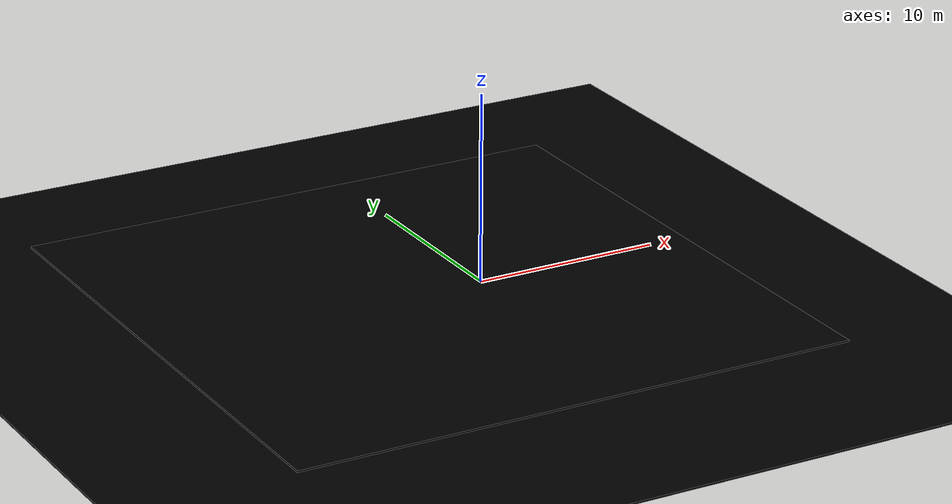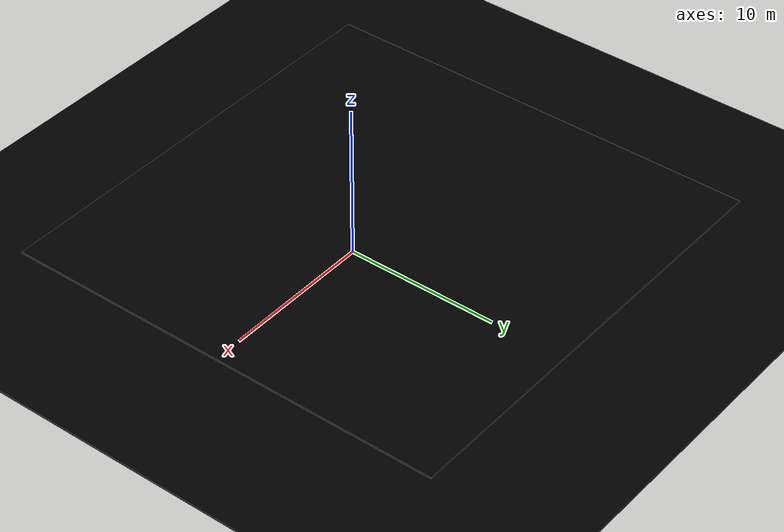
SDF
<sdf version="1.4">
 <world name="default">
  <light name="sun" type="directional">
   <pose>0 0 10 0 -0 0</pose>
   <diffuse>1.0 1.0 1.0 1</diffuse>
   <specular>0.2 0.2 0.2 1</specular>
   <attenuation>
    <range>1000</range>
    <constant>0.9</constant>
    <linear>0.01</linear>
    <quadratic>0.001</quadratic>
   </attenuation>
   <direction>-0.5 -0.5 -1.0</direction>
  </light>
  <include><uri>model://surface</uri><pose>0 0 -0.785  0 0 0</pose></include>
  <include><uri>model://ramp_groundplane</uri><pose>-3 0 0 0 0 0</pose></include>
  <include><uri>model://3m_ramp</uri><pose>-9.25 0 -0.785 0 -0.55 0</pose></include>
  <physics type="ode">
   <max_step_size>0.001</max_step_size>
   <real_time_factor>1</real_time_factor>
   <real_time_update_rate>1000</real_time_update_rate>
   <gravity>0 0 -9.8</gravity>
  </physics>
  <scene>
   <ambient>1 1 1 1</ambient>
   <background>1 1 1 1</background>
   <shadows>1</shadows>
   <sky><clouds><speed>12</speed></clouds></sky>
  </scene>
  <spherical_coordinates>
   <surface_model>EARTH_WGS84</surface_model>
   <latitude_deg>0</latitude_deg>
   <longitude_deg>0</longitude_deg>
   <elevation>0</elevation>
   <heading_deg>0</heading_deg>
  </spherical_coordinates>
 </world>
</sdf>

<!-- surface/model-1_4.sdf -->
<sdf version="1.4">
  <model name="black_ice_lower_friction">
    <static>true</static>
    <link name="link">
      <collision name="collision">
        <geometry>
          <box>
            <size>200 200 0.1</size>
          </box>
        </geometry>
        <surface>
          <friction>
            <ode>
              <mu>1</mu>
              <mu2>1</mu2>
            </ode>
          </friction>
        </surface>
      </collision>
      <visual name="visual_1">
        <pose>0 0 0 0 0 0</pose>
        <cast_shadows>false</cast_shadows>
        <geometry>
          <box>
            <size>200 200 0.1</size>
          </box>
        </geometry>
        <material>
          <ambient>109 112 113 1</ambient>
          <diffuse>0 0 0 1</diffuse>
          <specular>0 0 0 0</specular>
          <emissive>0 0 0 1</emissive>
        </material>
      </visual>
    </link>
  </model>
</sdf>

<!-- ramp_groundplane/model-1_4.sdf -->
<sdf version="1.4">
  <model name="ramp_groundplane">
    <static>true</static>
    <link name="link">
      <collision name="collision">
        <geometry>
          <box>
            <size>30 30 0.1</size>
          </box>
        </geometry>
        <surface>
          <friction>
            <ode>
              <mu>1</mu>
              <mu2>1</mu2>
            </ode>
          </friction>
        </surface>
      </collision>
      <visual name="visual_1">
        <pose>0 0 0 0 0 0</pose>
        <cast_shadows>false</cast_shadows>
        <geometry>
          <box>
            <size>30 30 0.1</size>
          </box>
        </geometry>
        <material>
          <ambient>137 179 194 1</ambient>
          <diffuse>0 0 0 1</diffuse>
          <specular>0 0 0 0</specular>
          <emissive>0 0 0 1</emissive>
        </material>
      </visual>
    </link>
  </model>
</sdf>

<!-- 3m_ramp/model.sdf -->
<sdf version="1.4">
  <model name="basic_ramp">
    <static>true</static>
    <link name="link">
      <collision name="collision">
        <geometry>
          <box>
            <size>8 10 0.2</size>
          </box>
        </geometry>
        <surface>
          <friction>
            <ode>
              <mu>10</mu>
              <mu2>10</mu2>
            </ode>
          </friction>
        </surface>
      </collision>
      <visual name="visual_1">
        <pose>-2 4.9 0  -0.2 0 0</pose>
        <cast_shadows>false</cast_shadows>
        <geometry>
          <box>
            <size>4 5 0.2</size>
          </box>
        </geometry>
        <material>
          <script>
            <uri>file://media/materials/scripts/gazebo.material</uri>
            <name>Gazebo/Wood</name>
          </script>
        </material>
      </visual>
      <visual name="visual_2">
        <pose>-2 -4.9 0  0.2 0 0</pose>
        <cast_shadows>false</cast_shadows>
        <geometry>
          <box>
            <size>4 5 0.2</size>
          </box>
        </geometry>
        <material>
          <script>
            <uri>file://media/materials/scripts/gazebo.material</uri>
            <name>Gazebo/Wood</name>
          </script>
        </material>
      </visual>
      <visual name="visual_3">
        <pose>-2 0 0.5  0 0 0</pose>
        <cast_shadows>false</cast_shadows>
        <geometry>
          <box>
            <size>4 5 0.2</size>
          </box>
        </geometry>
        <material>
          <script>
            <uri>file://media/materials/scripts/gazebo.material</uri>
            <name>Gazebo/Wood</name>
          </script>
        </material>
      </visual>
    </link>
  </model>
</sdf>
